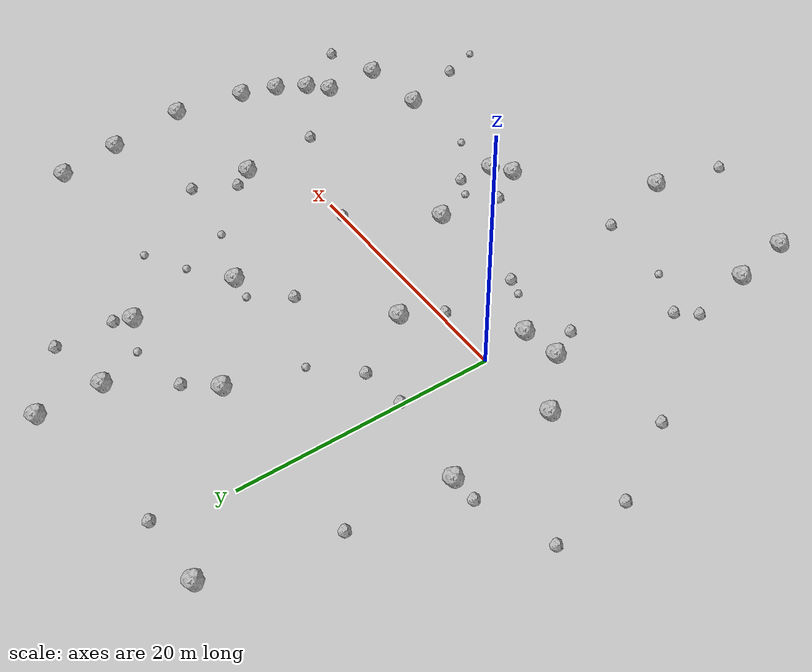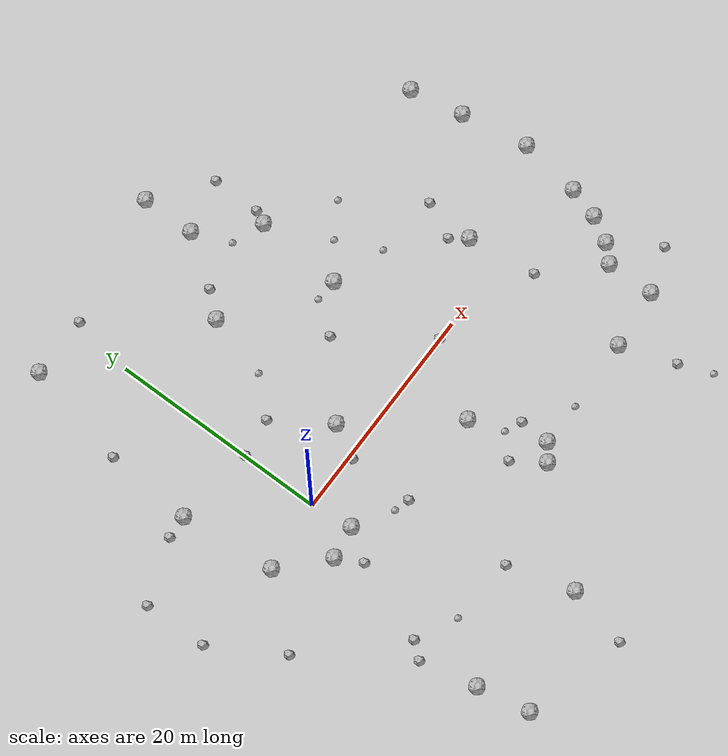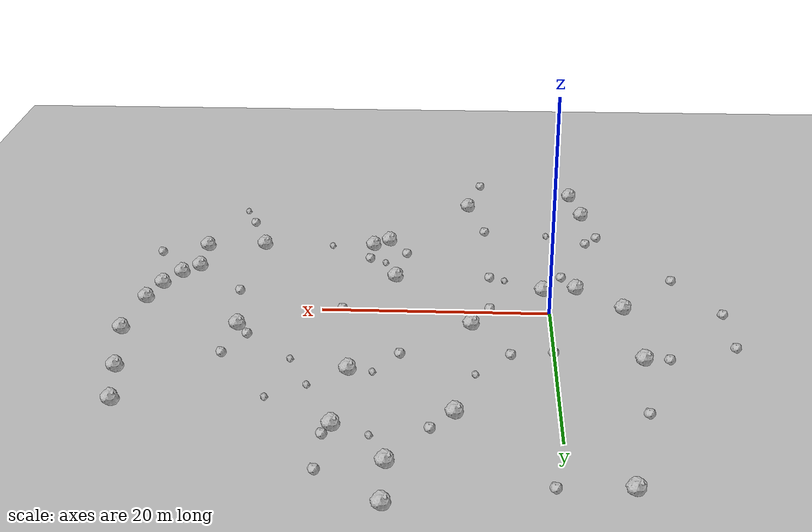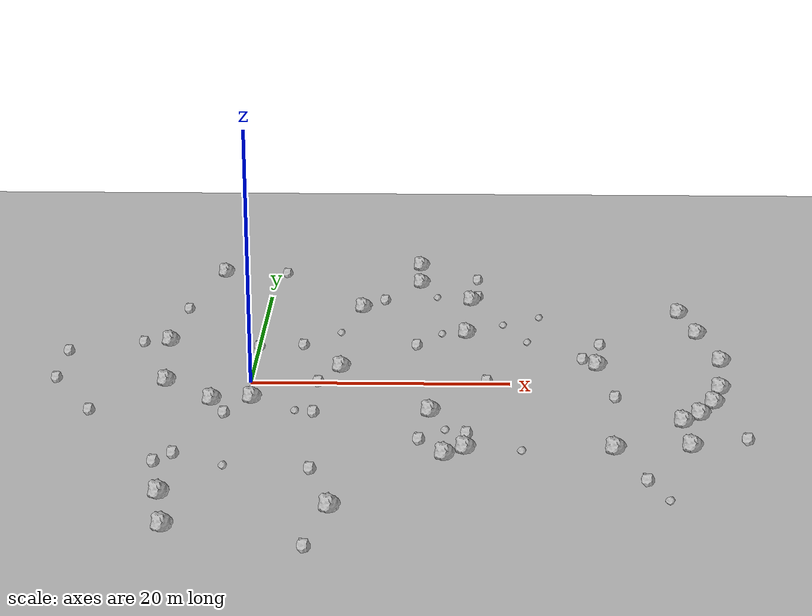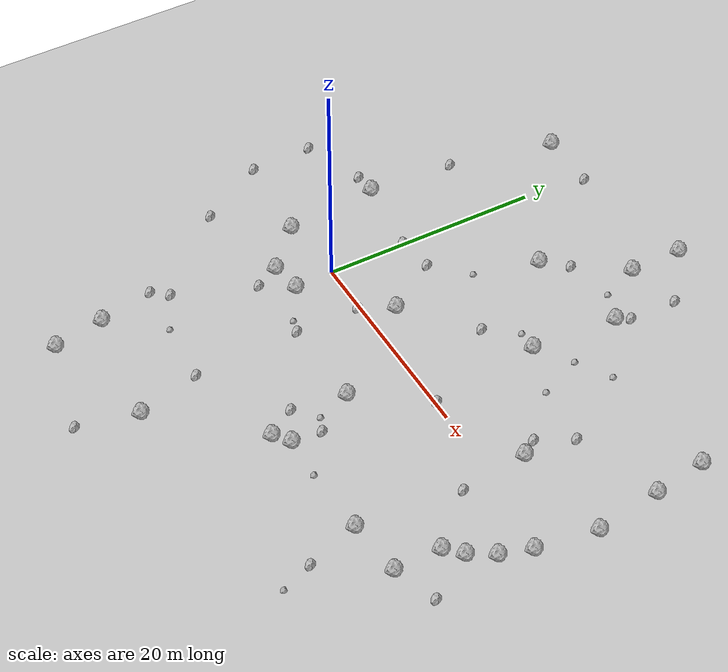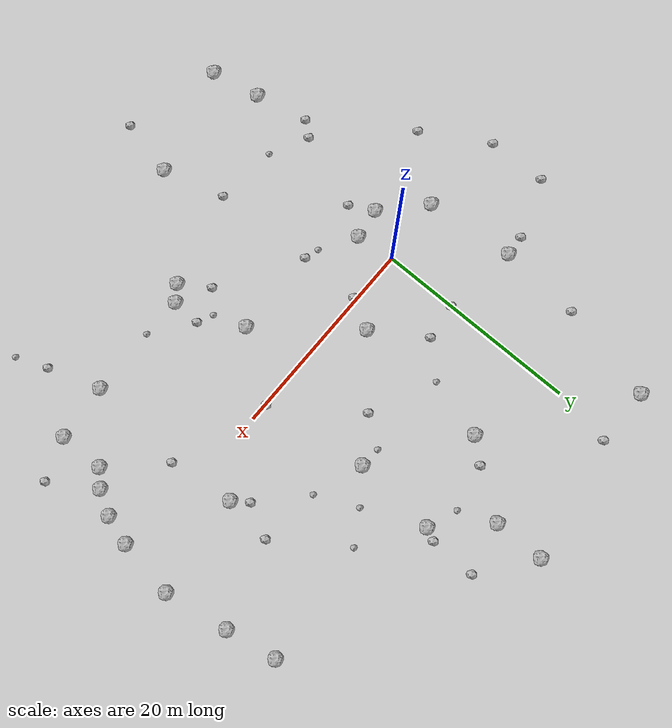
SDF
<sdf version="1.6">
 <world name="default">
  <include><uri>model://custom_ground</uri></include>
  <include><uri>model://sun</uri></include>
  <model name="rock1_0_0">
   <include><uri>model://rock1</uri><pose>-6.424930950970255 -0.587219061488998 0.5 0 0 0</pose></include>
  </model>
  <model name="rock1_0_1">
   <include><uri>model://rock1</uri><pose>0.4827601119100251 -3.8090856985313835 0.5 0 0 0</pose></include>
  </model>
  <model name="rock1_0_2">
   <include><uri>model://rock1</uri><pose>36.88775999359197 4.346876838986887 0.5 0 0 0</pose></include>
  </model>
  <model name="rock1_0_3">
   <include><uri>model://rock1</uri><pose>14.923049454195976 -13.80396306774842 0.5 0 0 0</pose></include>
  </model>
  <model name="rock1_0_4">
   <include><uri>model://rock1</uri><pose>16.887059671707675 10.390908326920261 0.5 0 0 0</pose></include>
  </model>
  <model name="rock1_0_5">
   <include><uri>model://rock1</uri><pose>8.138750803626664 16.44142675524393 0.5 0 0 0</pose></include>
  </model>
  <model name="rock1_0_6">
   <include><uri>model://rock1</uri><pose>13.911853286613521 -6.145931606272061 0.5 0 0 0</pose></include>
  </model>
  <model name="rock1_0_7">
   <include><uri>model://rock1</uri><pose>-4.143460547015906 -20.362375384908376 0.5 0 0 0</pose></include>
  </model>
  <model name="rock1_0_8">
   <include><uri>model://rock1</uri><pose>-3.2262482423043934 -25.13845869900265 0.5 0 0 0</pose></include>
  </model>
  <model name="rock1_0_9">
   <include><uri>model://rock1</uri><pose>6.906103817150765 2.608231383768441 0.5 0 0 0</pose></include>
  </model>
  <model name="rock1_0_10">
   <include><uri>model://rock1</uri><pose>27.049187201133932 3.336943743982914 0.5 0 0 0</pose></include>
  </model>
  <model name="rock1_0_11">
   <include><uri>model://rock1</uri><pose>26.960159791275785 -12.59698647021252 0.5 0 0 0</pose></include>
  </model>
  <model name="rock1_0_12">
   <include><uri>model://rock1</uri><pose>32.39070895929106 -7.7359565793915515 0.5 0 0 0</pose></include>
  </model>
  <model name="rock1_0_13">
   <include><uri>model://rock1</uri><pose>13.08126236878556 23.024323875420478 0.5 0 0 0</pose></include>
  </model>
  <model name="rock1_0_14">
   <include><uri>model://rock1</uri><pose>35.128662441814306 -4.126179838080205 0.5 0 0 0</pose></include>
  </model>
  <model name="rock1_0_15">
   <include><uri>model://rock1</uri><pose>16.388843395942907 -12.718197862610246 0.5 0 0 0</pose></include>
  </model>
  <model name="rock1_0_16">
   <include><uri>model://rock1</uri><pose>-7.296600861721473 8.082078696174172 0.5 0 0 0</pose></include>
  </model>
  <model name="rock1_0_17">
   <include><uri>model://rock1</uri><pose>-4.681012567768235 25.70677008234707 0.5 0 0 0</pose></include>
  </model>
  <model name="rock1_0_18">
   <include><uri>model://rock1</uri><pose>36.01405602124401 -1.2816330833552705 0.5 0 0 0</pose></include>
  </model>
  <model name="rock1_0_19">
   <include><uri>model://rock1</uri><pose>32.42811270994512 -12.105488435162709 0.5 0 0 0</pose></include>
  </model>
  <model name="rock1_0_20">
   <include><uri>model://rock1</uri><pose>33.806929551316706 -6.351853177204006 0.5 0 0 0</pose></include>
  </model>
  <model name="rock1_0_21">
   <include><uri>model://rock1</uri><pose>17.44617941107751 18.422138651616557 0.5 0 0 0</pose></include>
  </model>
  <model name="rock1_0_22">
   <include><uri>model://rock1</uri><pose>34.971879204956174 15.534540416273586 0.5 0 0 0</pose></include>
  </model>
  <model name="rock1_0_23">
   <include><uri>model://rock1</uri><pose>35.847326501902884 10.580018013693035 0.5 0 0 0</pose></include>
  </model>
  <model name="rock1_0_24">
   <include><uri>model://rock1</uri><pose>13.027638627756637 27.946789274651813 0.5 0 0 0</pose></include>
  </model>
  <model name="rock1_0_25">
   <include><uri>model://rock1</uri><pose>-2.507647725210937 -4.237533619354956 0.5 0 0 0</pose></include>
  </model>
  <model name="rock1_0_26">
   <include><uri>model://rock1</uri><pose>7.3377661946634625 -22.183354296081614 0.5 0 0 0</pose></include>
  </model>
  <model name="rock2_0_0">
   <include><uri>model://rock2</uri><pose>-4.121745442522933 -13.787380472383106 0.3 0 0 0</pose></include>
  </model>
  <model name="rock2_0_1">
   <include><uri>model://rock2</uri><pose>6.02727244789822 -27.691656911253133 0.3 0 0 0</pose></include>
  </model>
  <model name="rock2_0_2">
   <include><uri>model://rock2</uri><pose>5.643895941575003 -16.18768189136278 0.3 0 0 0</pose></include>
  </model>
  <model name="rock2_0_3">
   <include><uri>model://rock2</uri><pose>18.238238493033585 0.07173180588229755 0.3 0 0 0</pose></include>
  </model>
  <model name="rock2_0_4">
   <include><uri>model://rock2</uri><pose>3.6078879824832413 7.610764798383457 0.3 0 0 0</pose></include>
  </model>
  <model name="rock2_0_5">
   <include><uri>model://rock2</uri><pose>-15.186372700609452 5.87925003771295 0.3 0 0 0</pose></include>
  </model>
  <model name="rock2_0_6">
   <include><uri>model://rock2</uri><pose>16.504459766829108 -9.935552404733773 0.3 0 0 0</pose></include>
  </model>
  <model name="rock2_0_7">
   <include><uri>model://rock2</uri><pose>12.78260217597579 7.73079113643368 0.3 0 0 0</pose></include>
  </model>
  <model name="rock2_0_8">
   <include><uri>model://rock2</uri><pose>0.039705448453077 7.184080819439643 0.3 0 0 0</pose></include>
  </model>
  <model name="rock2_0_9">
   <include><uri>model://rock2</uri><pose>36.54334942712644 -10.65370863085327 0.3 0 0 0</pose></include>
  </model>
  <model name="rock2_0_10">
   <include><uri>model://rock2</uri><pose>27.597653816326684 8.040115236845125 0.3 0 0 0</pose></include>
  </model>
  <model name="rock2_0_11">
   <include><uri>model://rock2</uri><pose>-15.046654697180834 0.10346229742173918 0.3 0 0 0</pose></include>
  </model>
  <model name="rock2_0_12">
   <include><uri>model://rock2</uri><pose>-1.3454595727170044 -6.524952263800159 0.3 0 0 0</pose></include>
  </model>
  <model name="rock2_0_13">
   <include><uri>model://rock2</uri><pose>5.245549027416082 -6.27528653563828 0.3 0 0 0</pose></include>
  </model>
  <model name="rock2_0_14">
   <include><uri>model://rock2</uri><pose>-5.286193931160319 -15.205947305390694 0.3 0 0 0</pose></include>
  </model>
  <model name="rock2_0_15">
   <include><uri>model://rock2</uri><pose>28.641112922983126 -17.60046424606943 0.3 0 0 0</pose></include>
  </model>
  <model name="rock2_0_16">
   <include><uri>model://rock2</uri><pose>5.264321129621443 -0.3136881654027661 0.3 0 0 0</pose></include>
  </model>
  <model name="rock2_0_17">
   <include><uri>model://rock2</uri><pose>18.00236160064243 19.673171436700997 0.3 0 0 0</pose></include>
  </model>
  <model name="rock2_0_18">
   <include><uri>model://rock2</uri><pose>25.959879022906797 4.8422759221276195 0.3 0 0 0</pose></include>
  </model>
  <model name="rock2_0_19">
   <include><uri>model://rock2</uri><pose>-9.428198143826092 7.974403395505959 0.3 0 0 0</pose></include>
  </model>
  <model name="rock2_0_20">
   <include><uri>model://rock2</uri><pose>-6.799431593227098 16.081724157229836 0.3 0 0 0</pose></include>
  </model>
  <model name="rock2_0_21">
   <include><uri>model://rock2</uri><pose>9.94887941465078 18.61240090159602 0.3 0 0 0</pose></include>
  </model>
  <model name="rock2_0_22">
   <include><uri>model://rock2</uri><pose>18.074094186574 24.16056833041862 0.3 0 0 0</pose></include>
  </model>
  <model name="rock2_0_23">
   <include><uri>model://rock2</uri><pose>-11.388317694965211 -6.195728672452827 0.3 0 0 0</pose></include>
  </model>
  <model name="rock2_0_24">
   <include><uri>model://rock2</uri><pose>27.823754854013863 -3.0111221643475403 0.3 0 0 0</pose></include>
  </model>
  <model name="rock2_0_25">
   <include><uri>model://rock2</uri><pose>0.8898733755639938 25.777111683934173 0.3 0 0 0</pose></include>
  </model>
  <model name="rock2_0_26">
   <include><uri>model://rock2</uri><pose>13.080689797649228 -11.063708474578437 0.3 0 0 0</pose></include>
  </model>
  <model name="rock3_0_0">
   <include><uri>model://rock3</uri><pose>6.488434919068087 10.631520947523846 0.2 0 0 0</pose></include>
  </model>
  <model name="rock3_0_1">
   <include><uri>model://rock3</uri><pose>29.784587298323082 -20.63380957273997 0.2 0 0 0</pose></include>
  </model>
  <model name="rock3_0_2">
   <include><uri>model://rock3</uri><pose>14.445841882298659 19.550157781954475 0.2 0 0 0</pose></include>
  </model>
  <model name="rock3_0_3">
   <include><uri>model://rock3</uri><pose>20.330327477489178 -12.811855047368944 0.2 0 0 0</pose></include>
  </model>
  <model name="rock3_0_4">
   <include><uri>model://rock3</uri><pose>-0.43575194746698287 -15.672463894014507 0.2 0 0 0</pose></include>
  </model>
  <model name="rock3_0_5">
   <include><uri>model://rock3</uri><pose>23.021220149080612 14.557532408985587 0.2 0 0 0</pose></include>
  </model>
  <model name="rock3_0_6">
   <include><uri>model://rock3</uri><pose>21.738385684555894 8.68379241075872 0.2 0 0 0</pose></include>
  </model>
  <model name="rock3_0_7">
   <include><uri>model://rock3</uri><pose>3.8353257977112634 -5.90171158971166 0.2 0 0 0</pose></include>
  </model>
  <model name="rock3_0_8">
   <include><uri>model://rock3</uri><pose>14.82097568700263 10.517911142520376 0.2 0 0 0</pose></include>
  </model>
  <model name="rock3_0_9">
   <include><uri>model://rock3</uri><pose>19.92394835274196 12.666558596376184 0.2 0 0 0</pose></include>
  </model>
  <model name="rock3_0_10">
   <include><uri>model://rock3</uri><pose>14.966993434874212 -9.279859984470207 0.2 0 0 0</pose></include>
  </model>
 </world>
</sdf>
